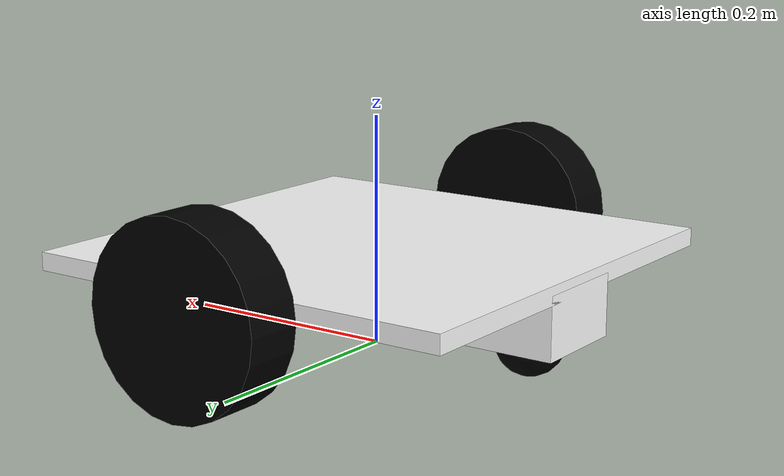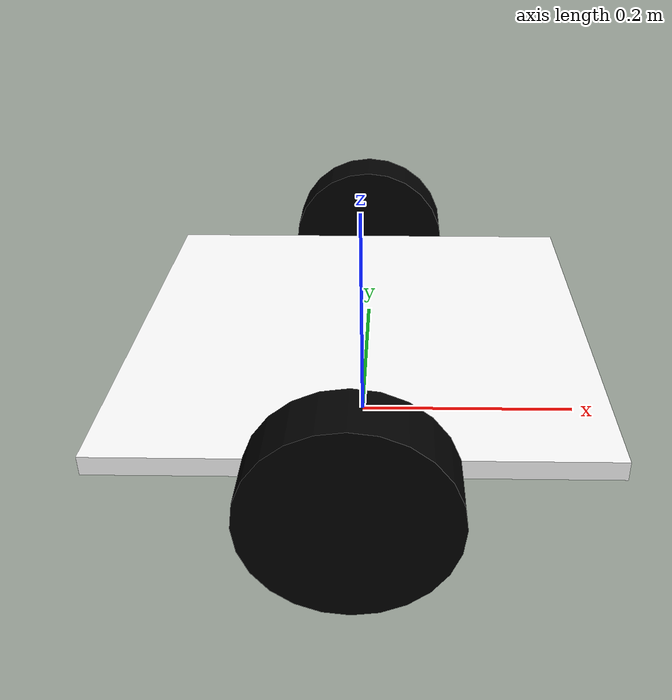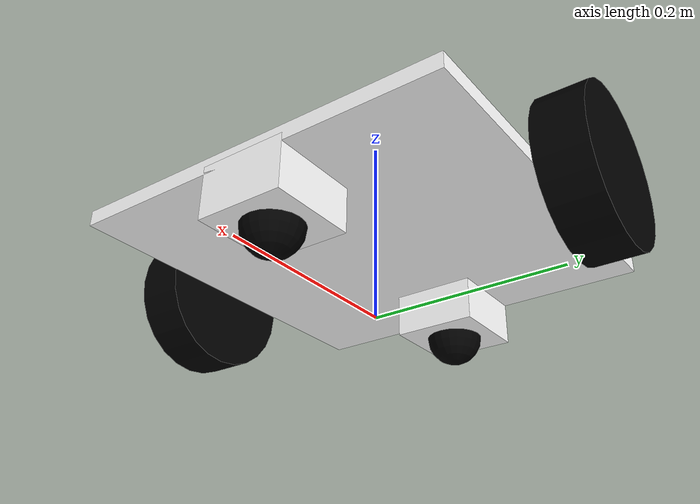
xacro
<?xml version="1.0"?>
<robot name="agv_proto" xmlns:xacro="http://ros.org/wiki/xacro">

    <material name="blue">
	    <color rgba="0 0 0.8 1"/>
    </material>

    <material name="white">
	    <color rgba="1 1 1 1"/>
    </material>

    <material name="black">
	    <color rgba="0 0 0 1"/>
    </material>

    <material name="green">
        <color rgba="0.0 0.8 0.0 1.0"/>
    </material>

	<link name="base_footprint">

    </link>

	<joint name="base_footprint_joint" type="fixed">
        <origin xyz="0 0 0" rpy="0 0 0" />
        <parent link="base_footprint" />
        <child link="base_link" />
    </joint>

    <link name="base_link">

    </link>

    <joint name="base_link_joint" type="fixed">
        <origin xyz="0 0 0.10" rpy="0 0 0" />
        <parent link="base_link" />
        <child link="base_plate" />
    </joint>

    <link name="base_plate">
    <visual>
      <origin rpy="0 0 0" xyz="0.0 0 -0.016"/>
      <geometry>
         <box size="0.4 0.4 0.016"/>
      </geometry>
      <material name="white"/>
    </visual>
    <collision>
      <origin rpy="0 0 0" xyz="0.0 0 -0.016"  />
      <geometry>
         <box size="0.4 0.04 0.016"/>
      </geometry>
    </collision>
    </link>

    <joint name="right_wheel_joint" type="continuous">
        <origin xyz="-0.0 -0.21 -0.02" rpy="1.5708 0 0" />
        <parent link="base_plate" />
        <child link="right_wheel" />
        <axis xyz="0 0 -1" />
    </joint>

    <link name="right_wheel">
    <visual>
      <origin rpy="0 -0.0 0." xyz="0.0 0.0 0.025"/>
      <geometry>
        <cylinder length="0.05" radius="0.08"/>
      </geometry>
      <material name="black"/>
    </visual>
    <collision>
      <origin rpy="0 0 0" xyz="0.0 0.0 0.025"/>
      <geometry>
        <cylinder length="0.05" radius="0.08"/>
      </geometry>
    </collision>
    </link>

    <joint name="left_wheel_joint" type="continuous">
        <origin xyz="0.0 0.21 -0.02" rpy="1.5708 0 0" />
        <parent link="base_plate" />
        <child link="left_wheel" />
        <axis xyz="0 0 -1" />
    </joint>

    <link name="left_wheel">
    <visual>
      <origin rpy="0 -0.0 0." xyz="0.0 0.0 -0.025"/>
      <geometry>
        <cylinder length="0.05" radius="0.08"/>
      </geometry>
      <material name="black"/>
    </visual>
    <collision>
      <origin rpy="0 0 0" xyz="0.0 0.0 -0.025"/>
      <geometry>
        <cylinder length="0.05" radius="0.08"/>
      </geometry>
    </collision>
    </link>

    <joint name="caster1_joint" type="fixed">
        <origin xyz="0.155 0.0 -0.016" rpy="0 0 0" />
        <parent link="base_plate" />
        <child link="caster1_dummy" />
    </joint>

    <link name="caster1_dummy">
    <visual>
      <origin rpy="0 0.0 0." xyz="0.0 0.0 -0.027"/>
      <geometry>
        <box size="0.09 0.09 0.054"/>
      </geometry>
      <material name="white"/>
    </visual>
    <collision>
      <origin rpy="0 0 0" xyz="0.0 0.0 -0.027"/>
      <geometry>
        <box size="0.09 0.9 0.054"/>
      </geometry>
    </collision>
    </link>

    <joint name="caster2_joint" type="fixed">
        <origin xyz="-0.155 0.0 -0.016" rpy="0 0 0" />
        <parent link="base_plate" />
        <child link="caster2_dummy" />
    </joint>

    <link name="caster2_dummy">
    <visual>
      <origin rpy="0 0.0 0." xyz="0.0 0.0 -0.027"/>
      <geometry>
        <box size="0.09 0.09 0.054"/>
      </geometry>
      <material name="white"/>
    </visual>
    <collision>
      <origin rpy="0 0 0" xyz="0.0 0.0 -0.027"/>
      <geometry>
        <box size="0.09 0.9 0.054"/>
      </geometry>
    </collision>
    </link>

    <joint name="caster1_wheel_joint" type="fixed">
        <origin xyz="-0.0 0.0 -0.054" rpy="0 0 0" />
        <parent link="caster1_dummy" />
        <child link="caster1_wheel" />
    </joint>

    <link name="caster1_wheel">
        <visual>
          <origin rpy="0 0.0 0." xyz="0.0 0.0 -0.0"/>
          <geometry>
            <sphere radius="0.03"/>
          </geometry>
          <material name="black"/>
        </visual>
        <collision>
          <origin rpy="0 0 0" xyz="0.0 0.0 -0.0"/>
          <geometry>
            <sphere radius="0.03"/>
          </geometry>
        </collision>
    </link>

    <joint name="caster2_wheel_joint" type="fixed">
        <origin xyz="-0.0 0.0 -0.054" rpy="0 0 0" />
        <parent link="caster2_dummy" />
        <child link="caster2_wheel" />
    </joint>

    <link name="caster2_wheel">
        <visual>
          <origin rpy="0 0.0 0." xyz="0.0 0.0 -0.0"/>
          <geometry>
            <sphere radius="0.03"/>
          </geometry>
          <material name="black"/>
        </visual>
        <collision>
          <origin rpy="0 0 0" xyz="0.0 0.0 -0.0"/>
          <geometry>
            <sphere radius="0.03"/>
          </geometry>
        </collision>
    </link>

   <joint name="laser_joint" type="fixed">
        <origin xyz="0.12 0.0 0.035" rpy="0 0 0" />
        <parent link="base_plate" />
        <child link="laser" />
    </joint>

    <link name="laser">

    </link>

	<link name="imu_link">

    </link>

    <joint name="imu_link_joint" type="fixed">
        <origin xyz="0.18 -0.18 0.035" rpy="0 0 0" />
        <parent link="base_plate" />
        <child link="imu_link" />
    </joint>

    <xacro:macro name="diffbot_ros2_control" params="name prefix use_mock_hardware">
    <ros2_control name="${name}" type="system">
      <xacro:if value="${use_mock_hardware}">
        <hardware>
          <plugin>mock_components/GenericSystem</plugin>
          <param name="calculate_dynamics">true</param>
        </hardware>
      </xacro:if>
      <xacro:unless value="${use_mock_hardware}">
        <hardware>
          <plugin>agv_proto_hardware/DiffBotSystemHardware</plugin>
          <param name="example_param_hw_start_duration_sec">0</param>
          <param name="example_param_hw_stop_duration_sec">3.0</param>
        </hardware>
      </xacro:unless>
      <joint name="${prefix}left_wheel_joint">
        <command_interface name="velocity"/>
        <state_interface name="position"/>
        <state_interface name="velocity"/>

      </joint>
      <joint name="${prefix}right_wheel_joint">
        <command_interface name="velocity"/>
        <state_interface name="position"/>
        <state_interface name="velocity"/>
      </joint>
    </ros2_control>
  </xacro:macro>
  <xacro:diffbot_ros2_control name="diffbot_control" prefix="" use_mock_hardware="true"/>

</robot>
